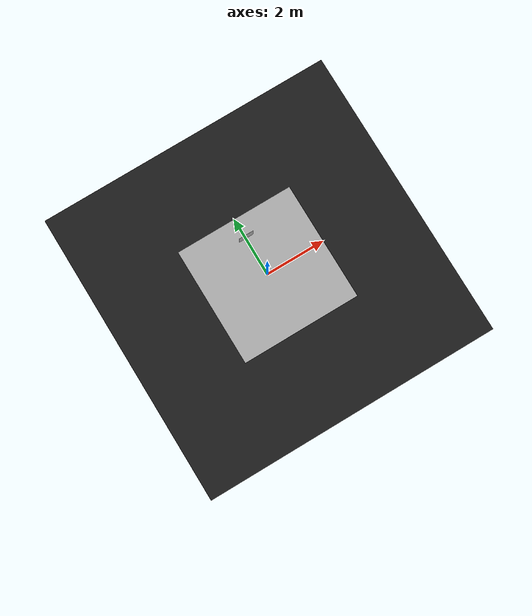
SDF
<sdf version="1.6">
 <world name="default">
  <model name="track">
   <static>true</static>
   <link name="track_link">
    <visual name="track_visual">
     <cast_shadows>false</cast_shadows>
     <geometry><plane><normal>0 0 1</normal><size>4 4</size></plane></geometry>
     <material>
      <script>
       <uri>model://track/materials/scripts</uri>
       <uri>model://track/materials/textures/</uri>
       <name>track</name>
      </script>
     </material>
    </visual>
    <collision name="track_collision">
     <geometry><plane><normal>0 0 1</normal><size>4 4</size></plane></geometry>
     <surface><friction><ode><mu>1.0</mu><mu2>1.0</mu2></ode></friction></surface>
    </collision>
   </link>
  </model>
  <model name="stop_sign">
   <pose>0 1.25 0.5 1.5708 0 1.5708</pose>
   <static>true</static>
   <link name="stop_sign_link">
    <visual name="stop_sign_visual">
     <cast_shadows>false</cast_shadows>
     <geometry><plane><normal>1 0 0</normal><size>0.5 0.5</size></plane></geometry>
     <material>
      <script>
       <uri>model://stop_sign/materials/scripts</uri>
       <uri>model://stop_sign/materials/textures/</uri>
       <name>stop_sign</name>
      </script>
     </material>
    </visual>
    <collision name="stop_sign_collision">
     <geometry><plane><normal>1 0 0</normal><size>0.5 0.5</size></plane></geometry>
     <surface><friction><ode><mu>1.0</mu><mu2>1.0</mu2></ode></friction></surface>
    </collision>
   </link>
  </model>
  <scene>
   <ambient>0 0 0 1</ambient>
   <shadows>0</shadows>
   <grid>0</grid>
   <background>0.7 0.7 0.7 1</background>
  </scene>
  <light name="sun" type="directional">
   <pose>0 0 10 0 -0 0</pose>
   <diffuse>0.8 0.8 0.8 1</diffuse>
   <specular>0.1 0.1 0.1 1</specular>
   <attenuation>
    <range>1000</range>
    <constant>0.9</constant>
    <linear>0.01</linear>
    <quadratic>0.001</quadratic>
   </attenuation>
   <direction>-0.5 0.5 -1</direction>
  </light>
  <model name="ground2">
   <pose>0 0 -0.1 0 -0 0</pose>
   <static>1</static>
   <link name="ground">
    <collision name="ground_coll"><geometry><box><size>8 8 0.01</size></box></geometry></collision>
    <visual name="ground_vis">
     <geometry><box><size>10 10 0.01</size></box></geometry>
     <material>
      <script><uri>file://media/materials/scripts/gazebo.material</uri><name>Gazebo/FlatBlack</name></script>
     </material>
    </visual>
   </link>
  </model>
  <gravity>0 0 -9.8</gravity>
  <magnetic_field>6e-06 2.3e-05 -4.2e-05</magnetic_field>
  <atmosphere type="adiabatic"/>
  <physics name="default_physics" default="0" type="ode">
   <max_step_size>0.001</max_step_size>
   <real_time_factor>1</real_time_factor>
   <real_time_update_rate>1000</real_time_update_rate>
   <ode><solver><iters>10</iters></solver></ode>
  </physics>
  <spherical_coordinates>
   <surface_model>EARTH_WGS84</surface_model>
   <latitude_deg>0</latitude_deg>
   <longitude_deg>0</longitude_deg>
   <elevation>0</elevation>
   <heading_deg>0</heading_deg>
  </spherical_coordinates>
  <light name="user_point_light_2" type="point">
   <pose>-0.948146 0.604519 1 0 -0 0</pose>
   <diffuse>0.5 0.5 0.5 1</diffuse>
   <specular>0.1 0.1 0.1 1</specular>
   <attenuation>
    <range>20</range>
    <constant>0.5</constant>
    <linear>0.01</linear>
    <quadratic>0.001</quadratic>
   </attenuation>
   <cast_shadows>0</cast_shadows>
   <direction>0 0 -1</direction>
  </light>
  <light name="user_point_light_6" type="point">
   <pose>1.63854 1.69565 1 0 -0 0</pose>
   <diffuse>0.5 0.5 0.5 1</diffuse>
   <specular>0.1 0.1 0.1 1</specular>
   <attenuation>
    <range>20</range>
    <constant>0.5</constant>
    <linear>0.01</linear>
    <quadratic>0.001</quadratic>
   </attenuation>
   <cast_shadows>0</cast_shadows>
   <direction>0 0 -1</direction>
  </light>
  <light name="user_point_light_7" type="point">
   <pose>0.42 -3.31 1 0 -0 0</pose>
   <diffuse>0.5 0.5 0.5 1</diffuse>
   <specular>0.1 0.1 0.1 1</specular>
   <attenuation>
    <range>20</range>
    <constant>0.5</constant>
    <linear>0.01</linear>
    <quadratic>0.001</quadratic>
   </attenuation>
   <cast_shadows>0</cast_shadows>
   <direction>0 0 -1</direction>
  </light>
  <light name="user_point_light_8" type="point">
   <pose>-1.8 1.5 1 0 -0 0</pose>
   <diffuse>0.5 0.5 0.5 1</diffuse>
   <specular>0.1 0.1 0.1 1</specular>
   <attenuation>
    <range>20</range>
    <constant>0.5</constant>
    <linear>0.01</linear>
    <quadratic>0.001</quadratic>
   </attenuation>
   <cast_shadows>0</cast_shadows>
   <direction>0 0 -1</direction>
  </light>
  <audio><device>default</device></audio>
 </world>
</sdf>
